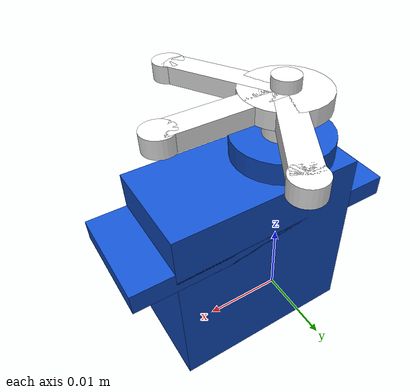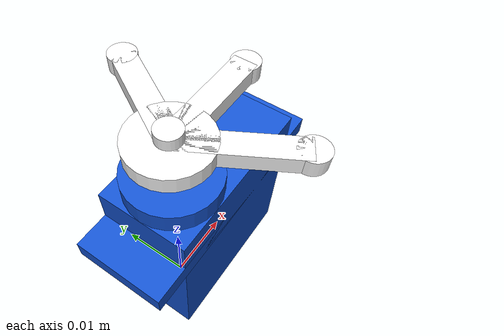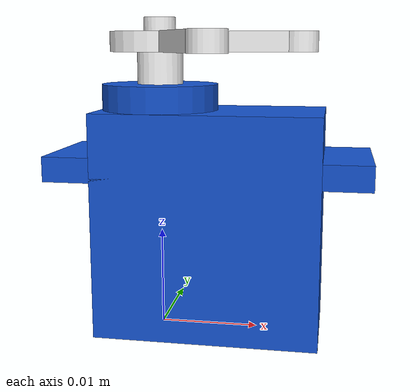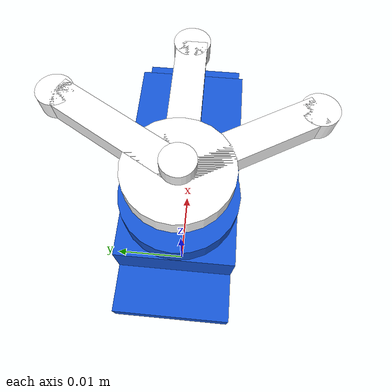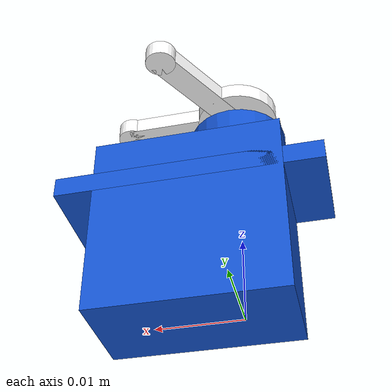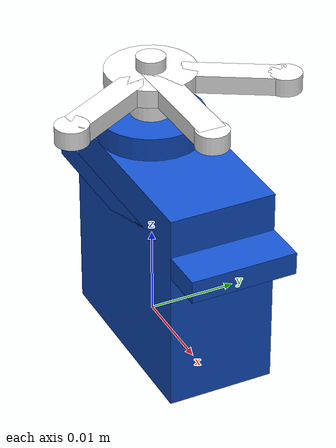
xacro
<robot xmlns:xacro="http://www.ros.org/wiki/xacro" name="my_servo">

  <!-- SG90 dimensions in meters -->
  <xacro:property name="servo_total_mass" value="0.0147" />
  <xacro:property name="servo_base_mass" value="0.0120" />
  <xacro:property name="servo_arm_mass" value="0.0027" />

  <xacro:property name="body_length" value="0.0225" />
  <xacro:property name="body_width" value="0.0118" />
  <xacro:property name="body_height" value="0.0227" />

  <xacro:property name="tab_total_length" value="0.0320" />
  <xacro:property name="tab_thickness" value="0.0025" />
  <xacro:property name="tab_z" value="0.01715" />

  <xacro:property name="cap_radius" value="0.0059" />
  <xacro:property name="cap_height" value="0.0026" />
  <xacro:property name="spline_radius" value="0.0023" />
  <xacro:property name="spline_height" value="0.0032" />

  <!-- Shaft center is offset from body center by 5.35 mm on X -->
  <xacro:property name="body_center_x" value="0.00535" />

  <xacro:property name="horn_hub_radius" value="0.0050" />
  <xacro:property name="horn_hub_height" value="0.0020" />
  <xacro:property name="horn_arm_length" value="0.0140" />
  <xacro:property name="horn_arm_width" value="0.0030" />
  <xacro:property name="horn_tip_radius" value="0.0018" />

  <!-- ============================================
       BASE LINK (Fixed base/driver)
       ============================================ -->
  <link name="base_link">
    <inertial>
      <origin xyz="${body_center_x} 0 ${body_height/2}" rpy="0 0 0"/>
      <mass value="${servo_base_mass}"/>
      <inertia
        ixx="${servo_base_mass * (body_width*body_width + body_height*body_height) / 12}"
        ixy="0.0"
        ixz="0.0"
        iyy="${servo_base_mass * (body_length*body_length + body_height*body_height) / 12}"
        iyz="0.0"
        izz="${servo_base_mass * (body_length*body_length + body_width*body_width) / 12}"/>
    </inertial>
    <collision>
      <origin xyz="${body_center_x} 0 ${body_height/2}" rpy="0 0 0"/>
      <geometry>
        <box size="${body_length} ${body_width} ${body_height}"/>
      </geometry>
    </collision>
    <!-- Main Body -->
    <visual>
      <origin xyz="${body_center_x} 0 ${body_height/2}" rpy="0 0 0"/>
      <geometry>
        <box size="${body_length} ${body_width} ${body_height}"/>
      </geometry>
      <material name="servo_body">
        <color rgba="0.08 0.33 0.82 1"/>
      </material>
    </visual>
    <!-- Mounting Flanges -->
    <visual>
      <origin xyz="${body_center_x} 0 ${tab_z}" rpy="0 0 0"/>
      <geometry>
        <box size="${tab_total_length} ${body_width} ${tab_thickness}"/>
      </geometry>
      <material name="servo_body"/>
    </visual>
    <!-- Spline base cylinder -->
    <visual>
      <origin xyz="0 0 ${body_height + cap_height/2}" rpy="0 0 0"/>
      <geometry>
        <cylinder radius="${cap_radius}" length="${cap_height}"/>
      </geometry>
      <material name="servo_body"/>
    </visual>
    <!-- Actual Rotating Spline -->
    <visual>
      <origin xyz="0 0 ${body_height + cap_height + spline_height/2}" rpy="0 0 0"/>
      <geometry>
        <cylinder radius="${spline_radius}" length="${spline_height}"/>
      </geometry>
      <material name="servo_spline">
        <color rgba="1 1 1 1"/>
      </material>
    </visual>
  </link>

  <!-- ============================================
       JOINT: servo_joint (Continuous rotation)
       ============================================ -->
  <joint name="servo_joint" type="continuous">
    <parent link="base_link"/>
    <child link="servo_arm"/>
    <origin xyz="0 0 ${body_height + cap_height + spline_height}" rpy="0 0 0"/>
    <axis xyz="0 0 1"/>
    <limit effort="10" velocity="2.0"/>
    <dynamics damping="0.1" friction="0.0"/>
  </joint>

  <!-- ============================================
       ARM LINK (Rotating part)
       ============================================ -->
  <link name="servo_arm">
    <inertial>
      <origin xyz="0 0 0" rpy="0 0 0"/>
      <mass value="${servo_arm_mass}"/>
      <inertia
        ixx="${servo_arm_mass * (0.03*0.03 + 0.003*0.003) / 12}"
        ixy="0.0"
        ixz="0.0"
        iyy="${servo_arm_mass * (0.03*0.03 + 0.003*0.003) / 12}"
        iyz="0.0"
        izz="${servo_arm_mass * (0.03*0.03 + 0.03*0.03) / 12}"/>
    </inertial>
    <collision>
      <origin xyz="0 0 ${horn_hub_height/2}" rpy="0 0 0"/>
      <geometry>
        <cylinder radius="${horn_arm_length + horn_tip_radius}" length="${horn_hub_height}"/>
      </geometry>
    </collision>
    <!-- Horn center hub -->
    <visual>
      <origin xyz="0 0 ${horn_hub_height/2}" rpy="0 0 0"/>
      <geometry>
        <cylinder radius="${horn_hub_radius}" length="${horn_hub_height}"/>
      </geometry>
      <material name="servo_horn">
        <color rgba="1 1 1 1"/>
      </material>
    </visual>

    <!-- Wing 1 -->
    <visual>
      <origin xyz="${horn_arm_length/2} 0 ${horn_hub_height/2}" rpy="0 0 0"/>
      <geometry>
        <box size="${horn_arm_length} ${horn_arm_width} ${horn_hub_height}"/>
      </geometry>
      <material name="servo_horn"/>
    </visual>
    <visual>
      <origin xyz="${horn_arm_length} 0 ${horn_hub_height/2}" rpy="0 0 0"/>
      <geometry>
        <cylinder radius="${horn_tip_radius}" length="${horn_hub_height}"/>
      </geometry>
      <material name="servo_horn"/>
    </visual>

    <!-- Wing 2 -->
    <visual>
      <origin xyz="${horn_arm_length/2 * 0.5} ${horn_arm_length/2 * 0.866} ${horn_hub_height/2}" rpy="0 0 1.0472"/>
      <geometry>
        <box size="${horn_arm_length} ${horn_arm_width} ${horn_hub_height}"/>
      </geometry>
      <material name="servo_horn"/>
    </visual>
    <visual>
      <origin xyz="${horn_arm_length * 0.5} ${horn_arm_length * 0.866} ${horn_hub_height/2}" rpy="0 0 0"/>
      <geometry>
        <cylinder radius="${horn_tip_radius}" length="${horn_hub_height}"/>
      </geometry>
      <material name="servo_horn"/>
    </visual>

    <!-- Wing 3 -->
    <visual>
      <origin xyz="${horn_arm_length/2 * 0.5} ${-horn_arm_length/2 * 0.866} ${horn_hub_height/2}" rpy="0 0 -1.0472"/>
      <geometry>
        <box size="${horn_arm_length} ${horn_arm_width} ${horn_hub_height}"/>
      </geometry>
      <material name="servo_horn"/>
    </visual>
    <visual>
      <origin xyz="${horn_arm_length * 0.5} ${-horn_arm_length * 0.866} ${horn_hub_height/2}" rpy="0 0 0"/>
      <geometry>
        <cylinder radius="${horn_tip_radius}" length="${horn_hub_height}"/>
      </geometry>
      <material name="servo_horn"/>
    </visual>

    <!-- Center screw head -->
    <visual>
      <origin xyz="0 0 ${horn_hub_height + 0.0007}" rpy="0 0 0"/>
      <geometry>
        <cylinder radius="0.0016" length="0.0014"/>
      </geometry>
      <material name="servo_horn"/>
    </visual>
  </link>

  <!-- ============================================
       ROS 2 CONTROL INTEGRATION
       ============================================ -->
  <ros2_control name="GazeboSystem" type="system">
    <hardware>
      <plugin>gazebo_ros2_control/GazeboSystem</plugin>
    </hardware>

    <!-- Servo Joint Controller -->
    <joint name="servo_joint">
      <command_interface name="position"/>
      <state_interface name="position"/>
      <state_interface name="velocity"/>
      <param name="initial_position">0.0</param>
    </joint>
  </ros2_control>

  <!-- ============================================
       GAZEBO PLUGINS
       ============================================ -->
  <gazebo>
    <!-- Plugin to link Gazebo and ROS 2 Control -->
    <plugin filename="libgazebo_ros2_control.so" name="gazebo_ros2_control">
      <robot_param_node>robot_state_publisher</robot_param_node>
      <parameters>/home/minh/servo_ws/install/my_servo_sim/share/my_servo_sim/config/my_servo_controllers.yaml</parameters>
    </plugin>
  </gazebo>

  <!-- Gazebo physics properties for base_link -->
  <gazebo reference="base_link">
    <mu1>1.0</mu1>
    <mu2>1.0</mu2>
    <material>Gazebo/Blue</material>
  </gazebo>

  <!-- Gazebo physics properties for servo_arm -->
  <gazebo reference="servo_arm">
    <mu1>0.5</mu1>
    <mu2>0.5</mu2>
    <material>Gazebo/White</material>
  </gazebo>

</robot>
